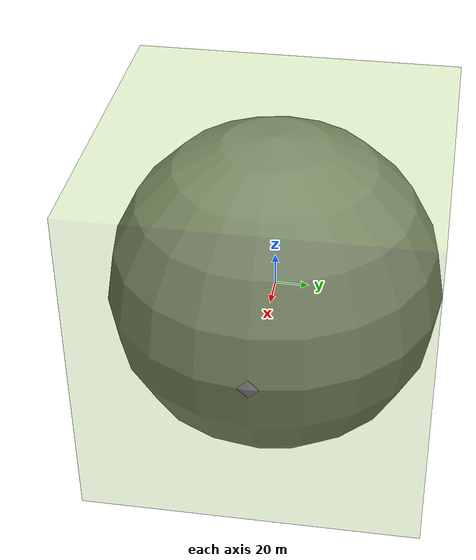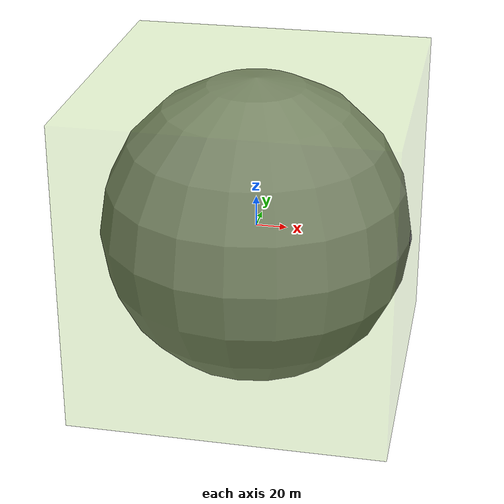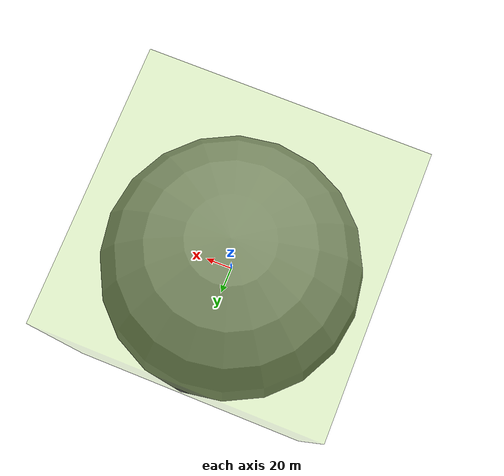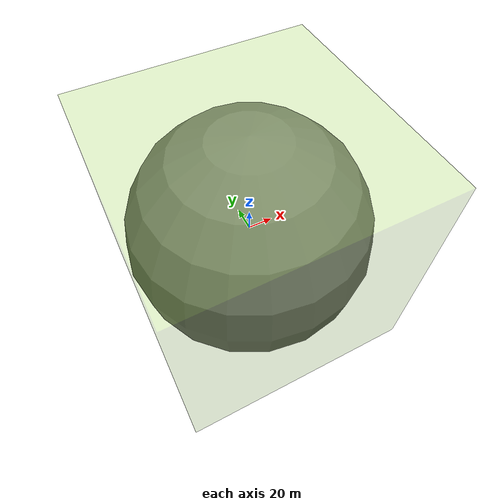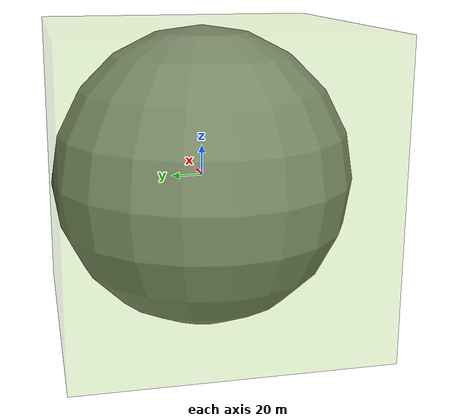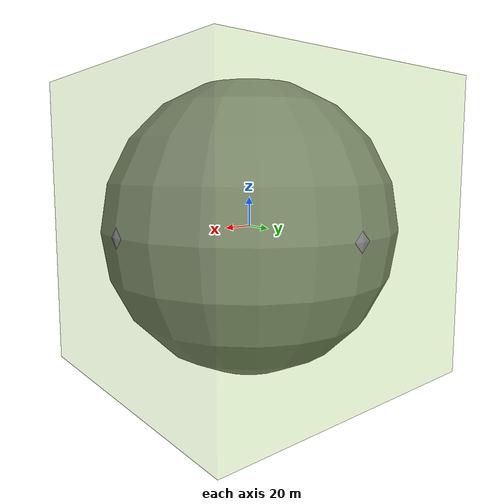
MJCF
<?xml version="1.0" encoding="utf-8"?>
<mujoco>
	<worldbody>
		<site name="bullet" size="100" type="sphere"></site>
        <body name="annotation:outer_bound" pos="-1 -1 0.0">
			<geom conaffinity="0" contype="0" mass="0" pos="0 0 0" rgba="0.417 0.7203 0.0001 0.1" size="100 100 100" type="box"></geom>
		</body>
	</worldbody>
</mujoco>
